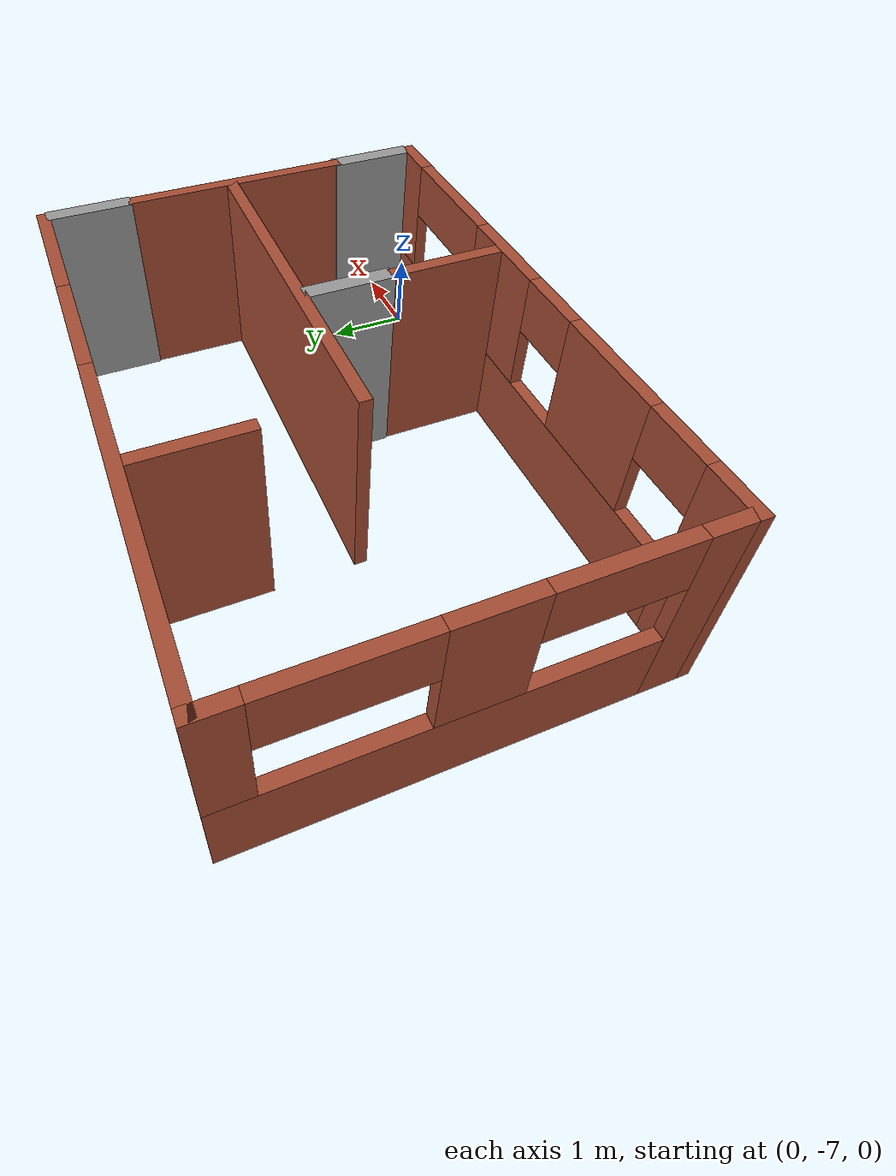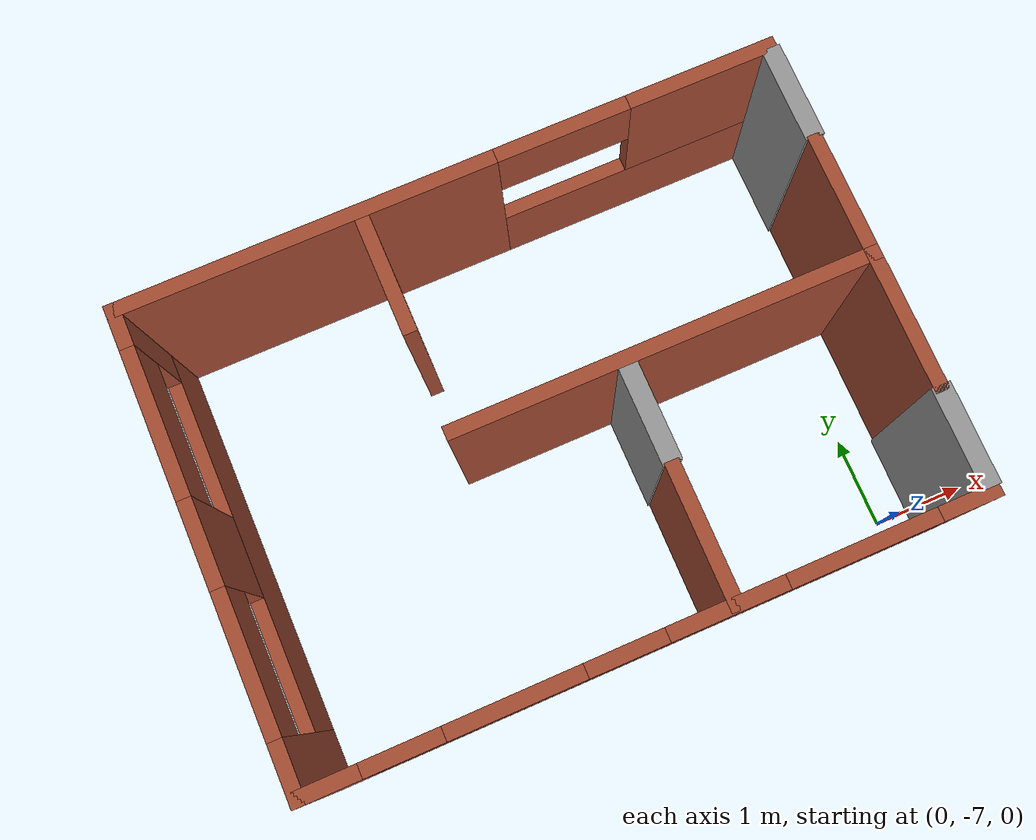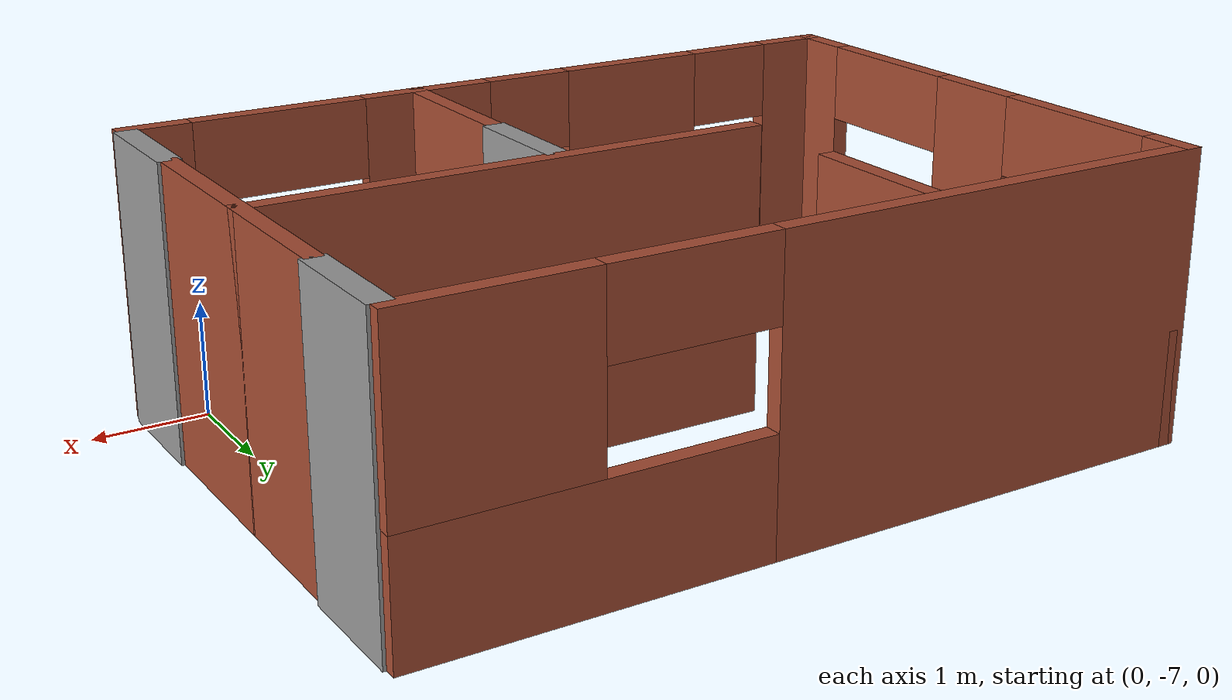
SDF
<?xml version='1.0'?>
<sdf version='1.7'>
  <model name='meu_mapa2'>
    <pose>-2.98 -3.6455 0 0 -0 0</pose>
    <link name='Door_7'>
      <collision name='Door_7_Collision'>
        <geometry>
          <box>
            <size>1.054 0.2 2.5</size>
          </box>
        </geometry>
        <pose>0 0 1.25 0 -0 0</pose>
      </collision>
      <visual name='Door_7_Visual'>
        <pose>0 0 1.25 0 -0 0</pose>
        <geometry>
          <box>
            <size>1.054 0.2 2.5</size>
          </box>
        </geometry>
        <material>
          <script>
            <uri>file://media/materials/scripts/gazebo.material</uri>
            <name>Gazebo/Grey</name>
          </script>
        </material>
      </visual>
      <pose>3.42812 -3.00431 0 0 -0 1.5691</pose>
    </link>
    <link name='Door_8'>
      <collision name='Door_8_Collision'>
        <geometry>
          <box>
            <size>1.03035 0.2 2.5</size>
          </box>
        </geometry>
        <pose>0 0 1.25 0 -0 0</pose>
      </collision>
      <visual name='Door_8_Visual'>
        <pose>0 0 1.25 0 -0 0</pose>
        <geometry>
          <box>
            <size>1.03035 0.2 2.5</size>
          </box>
        </geometry>
        <material>
          <script>
            <uri>file://media/materials/scripts/gazebo.material</uri>
            <name>Gazebo/Grey</name>
          </script>
        </material>
      </visual>
      <pose>3.42778 0.735647 0 0 -0 1.57202</pose>
    </link>
    <link name='Door_9'>
      <collision name='Door_9_Collision'>
        <geometry>
          <box>
            <size>1.048 0.2 2.5</size>
          </box>
        </geometry>
        <pose>0 0 1.25 0 -0 0</pose>
      </collision>
      <visual name='Door_9_Visual'>
        <pose>0 0 1.25 0 -0 0</pose>
        <geometry>
          <box>
            <size>1.048 0.2 2.5</size>
          </box>
        </geometry>
        <material>
          <script>
            <uri>file://media/materials/scripts/gazebo.material</uri>
            <name>Gazebo/Grey</name>
          </script>
        </material>
      </visual>
      <pose>0.829551 -1.63396 0 0 0 -1.56781</pose>
    </link>
    <link name='Wall_39'>
      <pose>0 -3.5705 0 0 -0 0</pose>
      <visual name='Wall_39_Visual_0'>
        <pose>-3.1649 0 1.25 0 -0 0</pose>
        <geometry>
          <box>
            <size>0.670203 0.15 2.5</size>
          </box>
        </geometry>
        <material>
          <script>
            <uri>file://media/materials/scripts/gazebo.material</uri>
            <name>Gazebo/Bricks</name>
          </script>
          <ambient>1 1 1 1</ambient>
        </material>
        <meta>
          <layer>0</layer>
        </meta>
      </visual>
      <collision name='Wall_39_Collision_0'>
        <geometry>
          <box>
            <size>0.670203 0.15 2.5</size>
          </box>
        </geometry>
        <pose>-3.1649 0 1.25 0 -0 0</pose>
      </collision>
      <visual name='Wall_39_Visual_1'>
        <pose>0.335102 0 0.5 0 -0 0</pose>
        <geometry>
          <box>
            <size>6.3298 0.15 1</size>
          </box>
        </geometry>
        <material>
          <script>
            <uri>file://media/materials/scripts/gazebo.material</uri>
            <name>Gazebo/Bricks</name>
          </script>
          <ambient>1 1 1 1</ambient>
        </material>
        <meta>
          <layer>0</layer>
        </meta>
      </visual>
      <collision name='Wall_39_Collision_1'>
        <geometry>
          <box>
            <size>6.3298 0.15 1</size>
          </box>
        </geometry>
        <pose>0.335102 0 0.5 0 -0 0</pose>
      </collision>
      <visual name='Wall_39_Visual_2'>
        <pose>-1.34357 0 1.75 0 -0 0</pose>
        <geometry>
          <box>
            <size>1.37245 0.15 1.5</size>
          </box>
        </geometry>
        <material>
          <script>
            <uri>file://media/materials/scripts/gazebo.material</uri>
            <name>Gazebo/Bricks</name>
          </script>
          <ambient>1 1 1 1</ambient>
        </material>
        <meta>
          <layer>0</layer>
        </meta>
      </visual>
      <collision name='Wall_39_Collision_2'>
        <geometry>
          <box>
            <size>1.37245 0.15 1.5</size>
          </box>
        </geometry>
        <pose>-1.34357 0 1.75 0 -0 0</pose>
      </collision>
      <visual name='Wall_39_Visual_3'>
        <pose>0.742884 0 1.75 0 -0 0</pose>
        <geometry>
          <box>
            <size>1.20045 0.15 1.5</size>
          </box>
        </geometry>
        <material>
          <script>
            <uri>file://media/materials/scripts/gazebo.material</uri>
            <name>Gazebo/Bricks</name>
          </script>
          <ambient>1 1 1 1</ambient>
        </material>
        <meta>
          <layer>0</layer>
        </meta>
      </visual>
      <collision name='Wall_39_Collision_3'>
        <geometry>
          <box>
            <size>1.20045 0.15 1.5</size>
          </box>
        </geometry>
        <pose>0.742884 0 1.75 0 -0 0</pose>
      </collision>
      <visual name='Wall_39_Visual_4'>
        <pose>3.19156 0 1.75 0 -0 0</pose>
        <geometry>
          <box>
            <size>0.616889 0.15 1.5</size>
          </box>
        </geometry>
        <material>
          <script>
            <uri>file://media/materials/scripts/gazebo.material</uri>
            <name>Gazebo/Bricks</name>
          </script>
          <ambient>1 1 1 1</ambient>
        </material>
        <meta>
          <layer>0</layer>
        </meta>
      </visual>
      <collision name='Wall_39_Collision_4'>
        <geometry>
          <box>
            <size>0.616889 0.15 1.5</size>
          </box>
        </geometry>
        <pose>3.19156 0 1.75 0 -0 0</pose>
      </collision>
      <visual name='Wall_39_Visual_5'>
        <pose>-2.4298 0 2.15 0 -0 0</pose>
        <geometry>
          <box>
            <size>0.8 0.15 0.7</size>
          </box>
        </geometry>
        <material>
          <script>
            <uri>file://media/materials/scripts/gazebo.material</uri>
            <name>Gazebo/Bricks</name>
          </script>
          <ambient>1 1 1 1</ambient>
        </material>
        <meta>
          <layer>0</layer>
        </meta>
      </visual>
      <collision name='Wall_39_Collision_5'>
        <geometry>
          <box>
            <size>0.8 0.15 0.7</size>
          </box>
        </geometry>
        <pose>-2.4298 0 2.15 0 -0 0</pose>
      </collision>
      <visual name='Wall_39_Visual_6'>
        <pose>-0.257342 0 2.15 0 -0 0</pose>
        <geometry>
          <box>
            <size>0.8 0.15 0.7</size>
          </box>
        </geometry>
        <material>
          <script>
            <uri>file://media/materials/scripts/gazebo.material</uri>
            <name>Gazebo/Bricks</name>
          </script>
          <ambient>1 1 1 1</ambient>
        </material>
        <meta>
          <layer>0</layer>
        </meta>
      </visual>
      <collision name='Wall_39_Collision_6'>
        <geometry>
          <box>
            <size>0.8 0.15 0.7</size>
          </box>
        </geometry>
        <pose>-0.257342 0 2.15 0 -0 0</pose>
      </collision>
      <visual name='Wall_39_Visual_7'>
        <pose>2.11311 0 2.15 0 -0 0</pose>
        <geometry>
          <box>
            <size>1.54 0.15 0.7</size>
          </box>
        </geometry>
        <material>
          <script>
            <uri>file://media/materials/scripts/gazebo.material</uri>
            <name>Gazebo/Bricks</name>
          </script>
          <ambient>1 1 1 1</ambient>
        </material>
        <meta>
          <layer>0</layer>
        </meta>
      </visual>
      <collision name='Wall_39_Collision_7'>
        <geometry>
          <box>
            <size>1.54 0.15 0.7</size>
          </box>
        </geometry>
        <pose>2.11311 0 2.15 0 -0 0</pose>
      </collision>
    </link>
    <link name='Wall_41'>
      <pose>-3.425 -1.1455 0 0 -0 1.5708</pose>
      <visual name='Wall_41_Visual_0'>
        <pose>-2.19029 0 1.25 0 -0 0</pose>
        <geometry>
          <box>
            <size>0.619419 0.15 2.5</size>
          </box>
        </geometry>
        <material>
          <script>
            <uri>file://media/materials/scripts/gazebo.material</uri>
            <name>Gazebo/Bricks</name>
          </script>
          <ambient>1 1 1 1</ambient>
        </material>
        <meta>
          <layer>0</layer>
        </meta>
      </visual>
      <collision name='Wall_41_Collision_0'>
        <geometry>
          <box>
            <size>0.619419 0.15 2.5</size>
          </box>
        </geometry>
        <pose>-2.19029 0 1.25 0 -0 0</pose>
      </collision>
      <visual name='Wall_41_Visual_1'>
        <pose>0.30971 0 0.5 0 -0 0</pose>
        <geometry>
          <box>
            <size>4.38058 0.15 1</size>
          </box>
        </geometry>
        <material>
          <script>
            <uri>file://media/materials/scripts/gazebo.material</uri>
            <name>Gazebo/Bricks</name>
          </script>
          <ambient>1 1 1 1</ambient>
        </material>
        <meta>
          <layer>0</layer>
        </meta>
      </visual>
      <collision name='Wall_41_Collision_1'>
        <geometry>
          <box>
            <size>4.38058 0.15 1</size>
          </box>
        </geometry>
        <pose>0.30971 0 0.5 0 -0 0</pose>
      </collision>
      <visual name='Wall_41_Visual_2'>
        <pose>0.018413 0 1.75 0 -0 0</pose>
        <geometry>
          <box>
            <size>0.894514 0.15 1.5</size>
          </box>
        </geometry>
        <material>
          <script>
            <uri>file://media/materials/scripts/gazebo.material</uri>
            <name>Gazebo/Bricks</name>
          </script>
          <ambient>1 1 1 1</ambient>
        </material>
        <meta>
          <layer>0</layer>
        </meta>
      </visual>
      <collision name='Wall_41_Collision_2'>
        <geometry>
          <box>
            <size>0.894514 0.15 1.5</size>
          </box>
        </geometry>
        <pose>0.018413 0 1.75 0 -0 0</pose>
      </collision>
      <visual name='Wall_41_Visual_3'>
        <pose>2.26301 0 1.75 0 -0 0</pose>
        <geometry>
          <box>
            <size>0.473971 0.15 1.5</size>
          </box>
        </geometry>
        <material>
          <script>
            <uri>file://media/materials/scripts/gazebo.material</uri>
            <name>Gazebo/Bricks</name>
          </script>
          <ambient>1 1 1 1</ambient>
        </material>
        <meta>
          <layer>0</layer>
        </meta>
      </visual>
      <collision name='Wall_41_Collision_3'>
        <geometry>
          <box>
            <size>0.473971 0.15 1.5</size>
          </box>
        </geometry>
        <pose>2.26301 0 1.75 0 -0 0</pose>
      </collision>
      <visual name='Wall_41_Visual_4'>
        <pose>-1.15471 0 2.15 0 -0 0</pose>
        <geometry>
          <box>
            <size>1.45174 0.15 0.7</size>
          </box>
        </geometry>
        <material>
          <script>
            <uri>file://media/materials/scripts/gazebo.material</uri>
            <name>Gazebo/Bricks</name>
          </script>
          <ambient>1 1 1 1</ambient>
        </material>
        <meta>
          <layer>0</layer>
        </meta>
      </visual>
      <collision name='Wall_41_Collision_4'>
        <geometry>
          <box>
            <size>1.45174 0.15 0.7</size>
          </box>
        </geometry>
        <pose>-1.15471 0 2.15 0 -0 0</pose>
      </collision>
      <visual name='Wall_41_Visual_5'>
        <pose>1.24585 0 2.15 0 -0 0</pose>
        <geometry>
          <box>
            <size>1.56036 0.15 0.7</size>
          </box>
        </geometry>
        <material>
          <script>
            <uri>file://media/materials/scripts/gazebo.material</uri>
            <name>Gazebo/Bricks</name>
          </script>
          <ambient>1 1 1 1</ambient>
        </material>
        <meta>
          <layer>0</layer>
        </meta>
      </visual>
      <collision name='Wall_41_Collision_5'>
        <geometry>
          <box>
            <size>1.56036 0.15 0.7</size>
          </box>
        </geometry>
        <pose>1.24585 0 2.15 0 -0 0</pose>
      </collision>
    </link>
    <link name='Wall_42'>
      <pose>0 1.2795 0 0 -0 0</pose>
      <visual name='Wall_42_Visual_0'>
        <pose>-1.5029 0 1.25 0 -0 0</pose>
        <geometry>
          <box>
            <size>3.9942 0.15 2.5</size>
          </box>
        </geometry>
        <material>
          <script>
            <uri>file://media/materials/scripts/gazebo.material</uri>
            <name>Gazebo/Bricks</name>
          </script>
          <ambient>1 1 1 1</ambient>
        </material>
        <meta>
          <layer>0</layer>
        </meta>
      </visual>
      <collision name='Wall_42_Collision_0'>
        <geometry>
          <box>
            <size>3.9942 0.15 2.5</size>
          </box>
        </geometry>
        <pose>-1.5029 0 1.25 0 -0 0</pose>
      </collision>
      <visual name='Wall_42_Visual_1'>
        <pose>1.9971 0 0.5 0 -0 0</pose>
        <geometry>
          <box>
            <size>3.0058 0.15 1</size>
          </box>
        </geometry>
        <material>
          <script>
            <uri>file://media/materials/scripts/gazebo.material</uri>
            <name>Gazebo/Bricks</name>
          </script>
          <ambient>1 1 1 1</ambient>
        </material>
        <meta>
          <layer>0</layer>
        </meta>
      </visual>
      <collision name='Wall_42_Collision_1'>
        <geometry>
          <box>
            <size>3.0058 0.15 1</size>
          </box>
        </geometry>
        <pose>1.9971 0 0.5 0 -0 0</pose>
      </collision>
      <visual name='Wall_42_Visual_2'>
        <pose>2.7011 0 1.75 0 -0 0</pose>
        <geometry>
          <box>
            <size>1.5978 0.15 1.5</size>
          </box>
        </geometry>
        <material>
          <script>
            <uri>file://media/materials/scripts/gazebo.material</uri>
            <name>Gazebo/Bricks</name>
          </script>
          <ambient>1 1 1 1</ambient>
        </material>
        <meta>
          <layer>0</layer>
        </meta>
      </visual>
      <collision name='Wall_42_Collision_2'>
        <geometry>
          <box>
            <size>1.5978 0.15 1.5</size>
          </box>
        </geometry>
        <pose>2.7011 0 1.75 0 -0 0</pose>
      </collision>
      <visual name='Wall_42_Visual_3'>
        <pose>1.1982 0 2.15 0 -0 0</pose>
        <geometry>
          <box>
            <size>1.408 0.15 0.7</size>
          </box>
        </geometry>
        <material>
          <script>
            <uri>file://media/materials/scripts/gazebo.material</uri>
            <name>Gazebo/Bricks</name>
          </script>
          <ambient>1 1 1 1</ambient>
        </material>
        <meta>
          <layer>0</layer>
        </meta>
      </visual>
      <collision name='Wall_42_Collision_3'>
        <geometry>
          <box>
            <size>1.408 0.15 0.7</size>
          </box>
        </geometry>
        <pose>1.1982 0 2.15 0 -0 0</pose>
      </collision>
    </link>
    <link name='Wall_47'>
      <collision name='Wall_47_Collision'>
        <geometry>
          <box>
            <size>2.8 0.15 2.5</size>
          </box>
        </geometry>
        <pose>0 0 1.25 0 -0 0</pose>
      </collision>
      <visual name='Wall_47_Visual'>
        <pose>0 0 1.25 0 -0 0</pose>
        <geometry>
          <box>
            <size>2.8 0.15 2.5</size>
          </box>
        </geometry>
        <material>
          <script>
            <uri>file://media/materials/scripts/gazebo.material</uri>
            <name>Gazebo/Bricks</name>
          </script>
          <ambient>1 1 1 1</ambient>
        </material>
        <meta>
          <layer>0</layer>
        </meta>
      </visual>
      <pose>3.425 -1.1455 0 0 -0 1.5708</pose>
    </link>
    <link name='Wall_51'>
      <collision name='Wall_51_Collision'>
        <geometry>
          <box>
            <size>4.5 0.15 2.5</size>
          </box>
        </geometry>
        <pose>0 0 1.25 0 -0 0</pose>
      </collision>
      <visual name='Wall_51_Visual'>
        <pose>0 0 1.25 0 -0 0</pose>
        <geometry>
          <box>
            <size>4.5 0.15 2.5</size>
          </box>
        </geometry>
        <material>
          <script>
            <uri>file://media/materials/scripts/gazebo.material</uri>
            <name>Gazebo/Bricks</name>
          </script>
          <ambient>1 1 1 1</ambient>
        </material>
        <meta>
          <layer>0</layer>
        </meta>
      </visual>
      <pose>1.25 -1.0705 0 0 -0 3.14159</pose>
    </link>
    <link name='Wall_54'>
      <collision name='Wall_54_Collision'>
        <geometry>
          <box>
            <size>1.25 0.15 2.5</size>
          </box>
        </geometry>
        <pose>0 0 1.25 0 -0 0</pose>
      </collision>
      <visual name='Wall_54_Visual'>
        <pose>0 0 1.25 0 -0 0</pose>
        <geometry>
          <box>
            <size>1.25 0.15 2.5</size>
          </box>
        </geometry>
        <material>
          <script>
            <uri>file://media/materials/scripts/gazebo.material</uri>
            <name>Gazebo/Bricks</name>
          </script>
          <ambient>1 1 1 1</ambient>
        </material>
        <meta>
          <layer>0</layer>
        </meta>
      </visual>
      <pose>-0.925 0.5795 0 0 -0 1.5708</pose>
    </link>
    <link name='Wall_60'>
      <collision name='Wall_60_Collision'>
        <geometry>
          <box>
            <size>1.5 0.15 2.5</size>
          </box>
        </geometry>
        <pose>0 0 1.25 0 -0 0</pose>
      </collision>
      <visual name='Wall_60_Visual'>
        <pose>0 0 1.25 0 -0 0</pose>
        <geometry>
          <box>
            <size>1.5 0.15 2.5</size>
          </box>
        </geometry>
        <material>
          <script>
            <uri>file://media/materials/scripts/gazebo.material</uri>
            <name>Gazebo/Bricks</name>
          </script>
          <ambient>1 1 1 1</ambient>
        </material>
        <meta>
          <layer>0</layer>
        </meta>
      </visual>
      <pose>0.825 -2.8815 0 0 -0 -1.5708</pose>
    </link>
    <static>1</static>
  </model>
</sdf>
